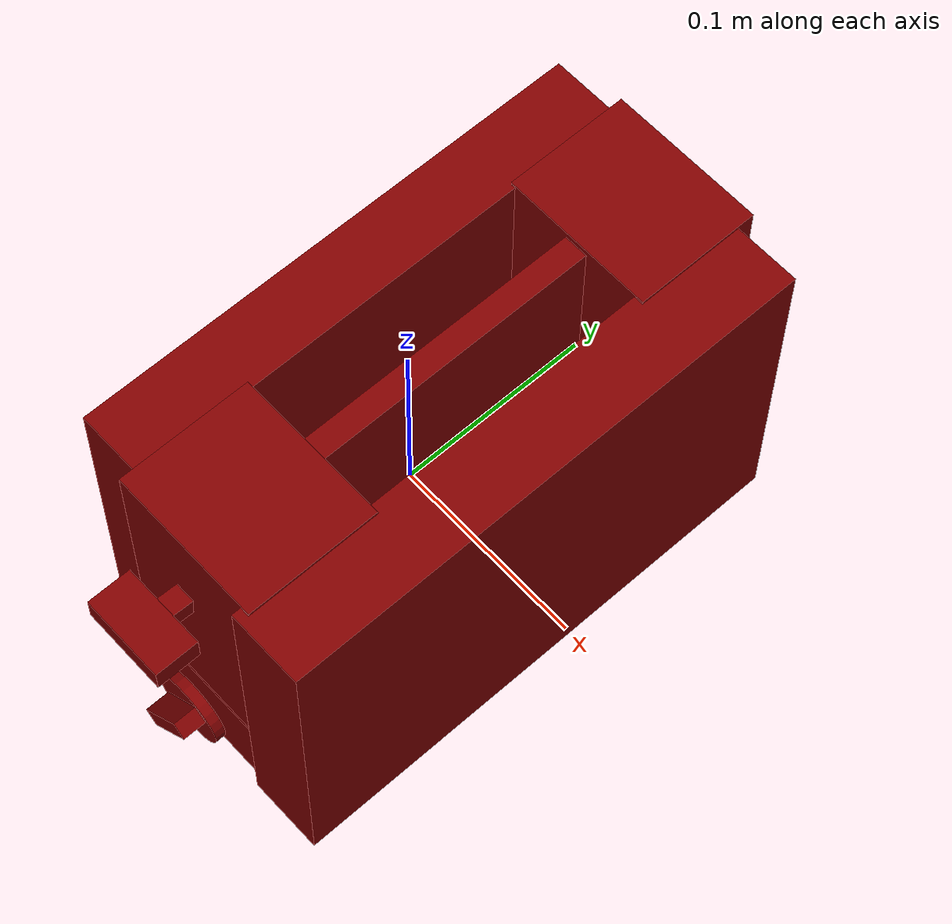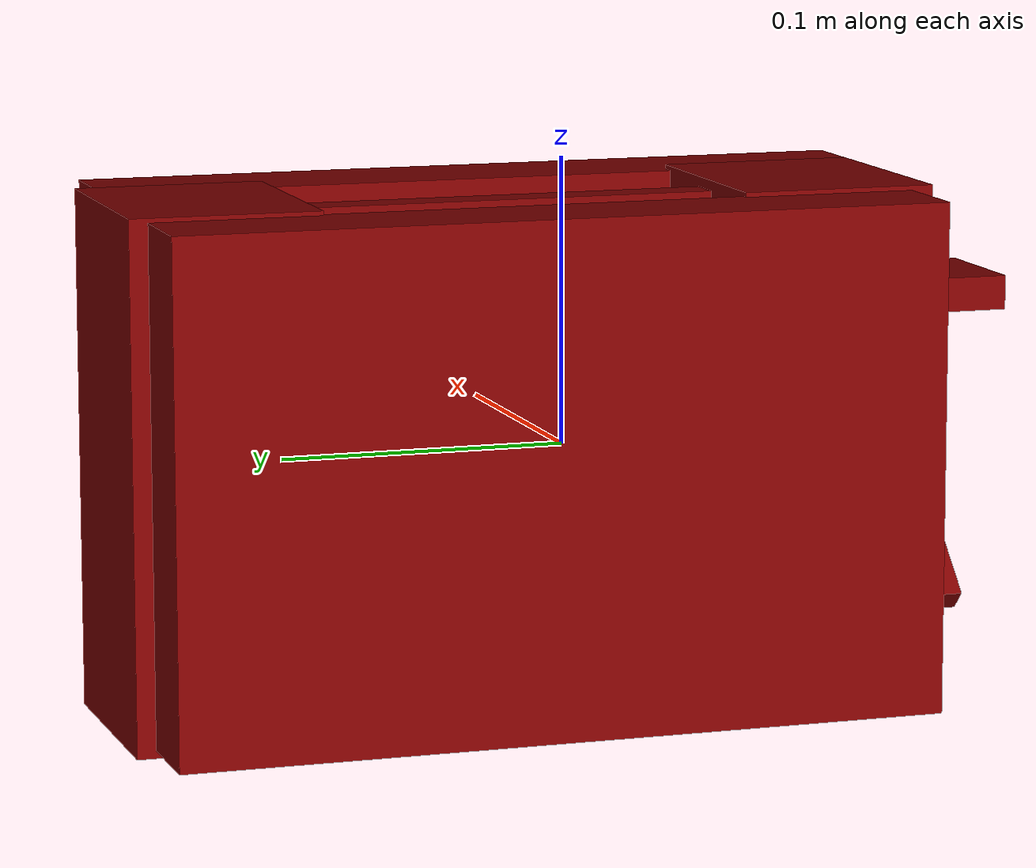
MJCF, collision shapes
<?xml version='1.0' encoding='UTF-8'?>
<mujoco model="model">
  <option timestep="0.002" gravity="0.0 0.0 -9.81"/>
  <compiler angle="radian"/>
  <asset>
    <mesh file="visuals/button_cancel.obj" name="button_cancel_vis"/>
    <mesh file="visuals/knob_doneness.obj" name="knob_doneness_vis"/>
    <mesh file="visuals/lever.obj" name="lever_vis"/>
    <mesh file="visuals/Body001.obj" name="Body001_vis"/>
    <texture file="visuals/T_BC001.png" name="Body001_material" type="2d"/>
    <material name="Body001_material" rgba="1 1 1 1.0" texture="Body001_material" shininess="0.1" specular="5"/>
    <texture file="visuals/T_BC001.png" name="button_cancel_material" type="2d"/>
    <material name="button_cancel_material" rgba="1 1 1 1.0" texture="button_cancel_material" shininess="0.1" specular="5"/>
    <texture file="visuals/T_BC001.png" name="knob_doneness_material" type="2d"/>
    <material name="knob_doneness_material" rgba="1 1 1 1.0" texture="knob_doneness_material" shininess="0.1" specular="5"/>
    <texture file="visuals/T_BC001.png" name="lever_material" type="2d"/>
    <material name="lever_material" rgba="1 1 1 1.0" texture="lever_material" shininess="0.1" specular="5"/>
  </asset>
  <default>
    <default class="visual">
      <geom conaffinity="0" contype="0" group="1" type="mesh"/>
    </default>
    <default class="collision_1">
      <geom group="0" rgba="0.5 0 0 0.5" solref="0.004 1" solimp="0.998 0.998 0.001"/>
    </default>
    <default class="collision_2">
      <geom group="0" rgba="0.5 0 0 0.5" solref="0.004 1" solimp="0.998 0.998 0.001"/>
    </default>
    <default class="collision_3">
      <geom group="0" rgba="0.5 0 0 0.5" solref="0.004 1" solimp="0.998 0.998 0.001"/>
    </default>
    <default class="collision_4">
      <geom group="0" rgba="0.5 0 0 0.5" solref="0.004 1" solimp="0.998 0.998 0.001"/>
    </default>
    <default class="spawn">
      <geom group="0" rgba="1 1 1 0.5" contype="0" conaffinity="0"/>
      <site group="0" rgba="1 1 1 0.5"/>
    </default>
    <default class="region">
      <geom group="1" conaffinity="0" contype="0" rgba="0 1 0 0" mass="0"/>
    </default>
  </default>
  <worldbody>
    <body>
      <body name="object">
        <geom mesh="Body001_vis" type="mesh" solimp="0.998 0.998 0.001" solref="0.001 1" friction="0.95 0.3 0.1" class="visual" material="Body001_material"/>
        <geom type="box" pos="-0.05594626 0.02090591 0.00059763" size="0.017723381519317627 0.13375632464885712 0.08814569562673569" quat="1.0 0.0 0.0 0.0" class="collision_1"/>
        <geom type="box" pos="0.05529997 0.01350825 0.00004703" size="0.01959610916674137 0.13869863748550415 0.08869626373052597" quat="1.0 0.0 0.0 0.0" class="collision_1"/>
        <geom type="box" pos="-0.00000002 0.12833679 0.00004084" size="0.04071611166000366 0.03273618966341019 0.0902436375617981" quat="1.0 0.0 0.0 0.0" class="collision_1"/>
        <geom type="box" pos="-0.00000002 -0.08632495 0.00938845" size="0.0407157763838768 0.034084752202034 0.08094797283411026" quat="1.0 0.0 0.0 0.0" class="collision_1"/>
        <geom type="box" pos="-0.00000002 0.01563294 0.01003529" size="0.0063636284321546555 0.0812753364443779 0.07665171474218369" quat="1.0 0.0 0.0 0.0" class="collision_1"/>
        <geom type="box" pos="-0.00000002 -0.01237213 -0.06792281" size="0.040402911603450775 0.10838718712329865 0.022947855293750763" quat="1.0 0.0 0.0 0.0" class="collision_1"/>
        <body name="button_cancel">
          <joint axis="0.44373607635498047 0.8961575031280518 0.0" pos="-0.04720331 -0.11789950 -0.05365665" limited="true" name="button_cancel_joint" range="0.0 0.001" type="slide" damping="1" frictionloss="1" armature=".01" stiffness="4" springref="-1"/>
          <geom mesh="button_cancel_vis" type="mesh" solimp="0.998 0.998 0.001" solref="0.001 1" friction="0.95 0.3 0.1" class="visual" material="button_cancel_material"/>
          <geom class="collision_2" type="box" pos="-0.04826723 -0.11894840 -0.05369539" size="0.009501592256128788 0.0012664112728089094 0.004307916853576899" quat="0.9719321727752686 0.0 -0.0 -0.23526135087013245" name="button_cancel_main"/>
        </body>
        <body name="knob_doneness">
          <joint axis="0.0 1.0 0.0" pos="0.00000088 -0.13526685 -0.05251249" limited="true" name="knob_doneness_joint" range="0.0 4.625122517784973" type="hinge" damping="0.05" armature="1" frictionloss="0.75"/>
          <geom mesh="knob_doneness_vis" type="mesh" solimp="0.998 0.998 0.001" solref="0.001 1" friction="0.95 0.3 0.1" class="visual" material="knob_doneness_material"/>
          <geom type="cylinder" pos="-0.00023149 -0.12978583 -0.05359321" size="0.01947701722383499 0.002702809404581785" quat="0.6946583986282349 0.7193397879600525 0.0 0.0" class="collision_3" friction="100 0.5 0.01"/>
          <geom class="collision_3" type="box" pos="-0.00068806 -0.13712312 -0.05232520" size="0.004428432788699865 0.007884013466536999 0.015563925728201866" quat="0.385798841714859 -2.3694221695791384e-08 -0.9225829243659973 -1.6682582426597037e-08" name="knob_doneness_main" friction="100 0.5 0.01"/>
        </body>
        <body name="lever">
          <joint axis="0.0 0.0 -1.0" pos="-0.00000002 -0.12747080 0.04749533" limited="true" name="lever_joint" range="0.0 0.055" type="slide" damping="1" frictionloss="1" armature=".1" stiffness="3.5" springref="-0.5"/>
          <geom class="region" name="reg_slotL" type="box" pos="-0.02272263 0.020850994999999997 0.09002504" size="0.01351248 0.073226925 0.07600000000000001"/>
          <geom class="region" name="reg_slotR" type="box" pos="0.021943735 0.020850994999999997 0.09002504" size="0.013505284999999999 0.073226925 0.07600000000000001"/>
          <geom mesh="lever_vis" type="mesh" solimp="0.998 0.998 0.001" solref="0.001 1" friction="0.95 0.3 0.1" class="visual" material="lever_material"/>
          <geom type="box" pos="-0.00000002 -0.13111949 0.04766211" size="0.005304454360157251 0.0075262258760631084 0.004767431877553463" quat="0.999254047870636 -0.03861769288778305 -0.0 0.0" class="collision_4"/>
          <geom class="collision_4" type="box" pos="-0.00009036 -0.14533773 0.04868123" size="0.022096820175647736 0.011113015003502369 0.005966723896563053" quat="1.0 0.0 0.0 0.0" name="lever_handle"/>
          <geom class="collision_4" type="box" pos="-0.02235773 0.02117614 0.01410612" size="0.012665169313549995 0.07211378216743469 0.0010030386038124561" quat="1.0 0.0 0.0 0.0" name="slotL_floor"/>
          <geom class="collision_4" type="box" pos="0.02162002 0.02117614 0.01410612" size="0.012665169313549995 0.07211378216743469 0.0010030386038124561" quat="1.0 0.0 0.0 0.0" name="slotR_floor"/>
        </body>
        <geom class="region" name="reg_main" type="box" pos="0.0 0.014288129999999996 0.0" size="0.07421218 0.14440995 0.09099576"/>
      </body>
    </body>
  </worldbody>
  <actuator>
    <motor name="button_cancel_joint_actuator" joint="button_cancel_joint" gear="0.5"/>
    <motor name="knob_doneness_joint_actuator" joint="knob_doneness_joint" gear="0.5"/>
    <motor name="lever_joint_actuator" joint="lever_joint" gear="0.5"/>
  </actuator>
</mujoco>
